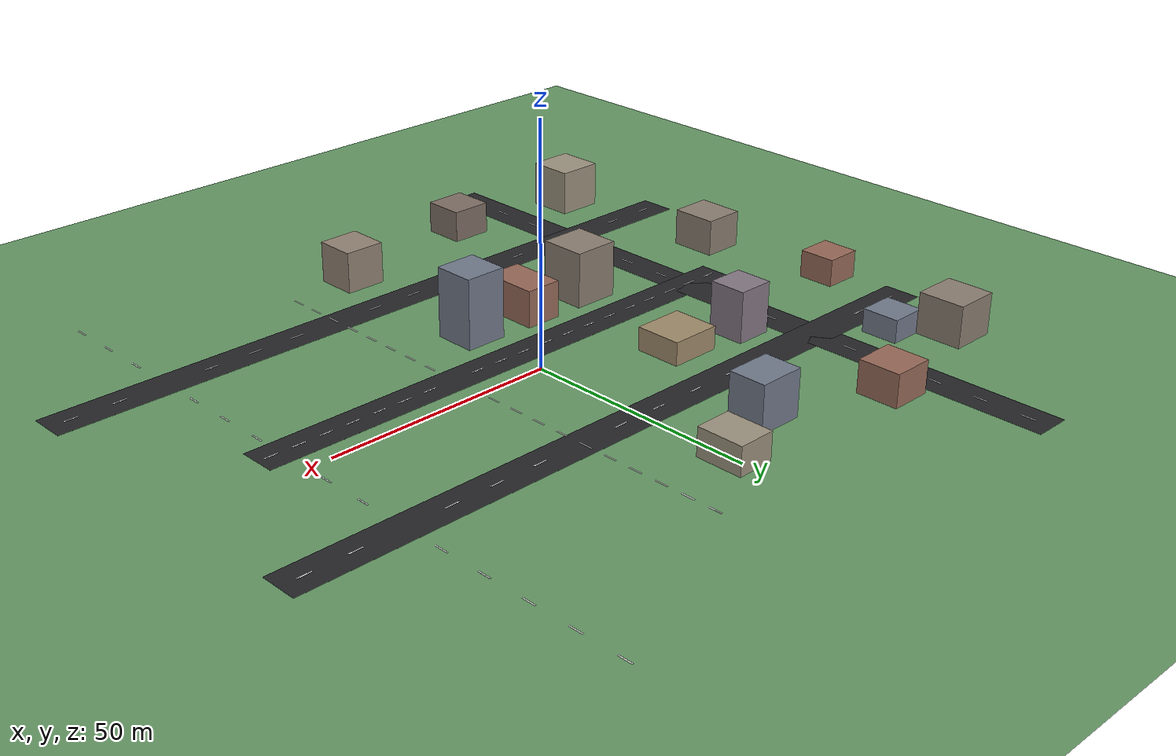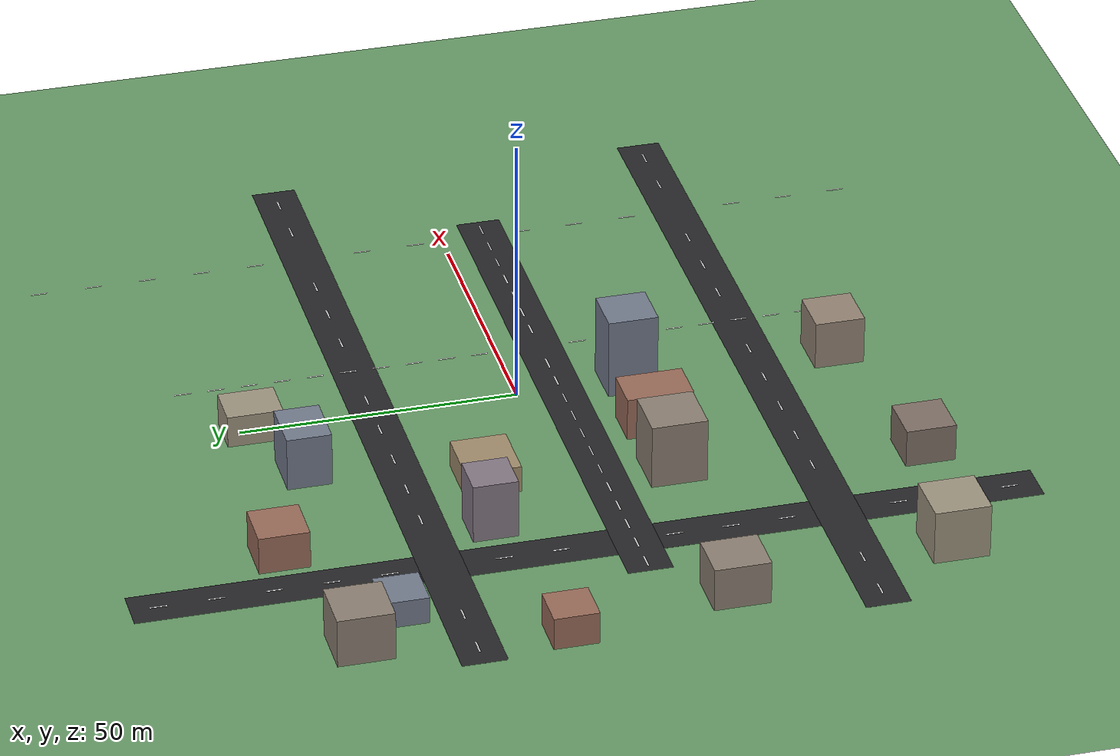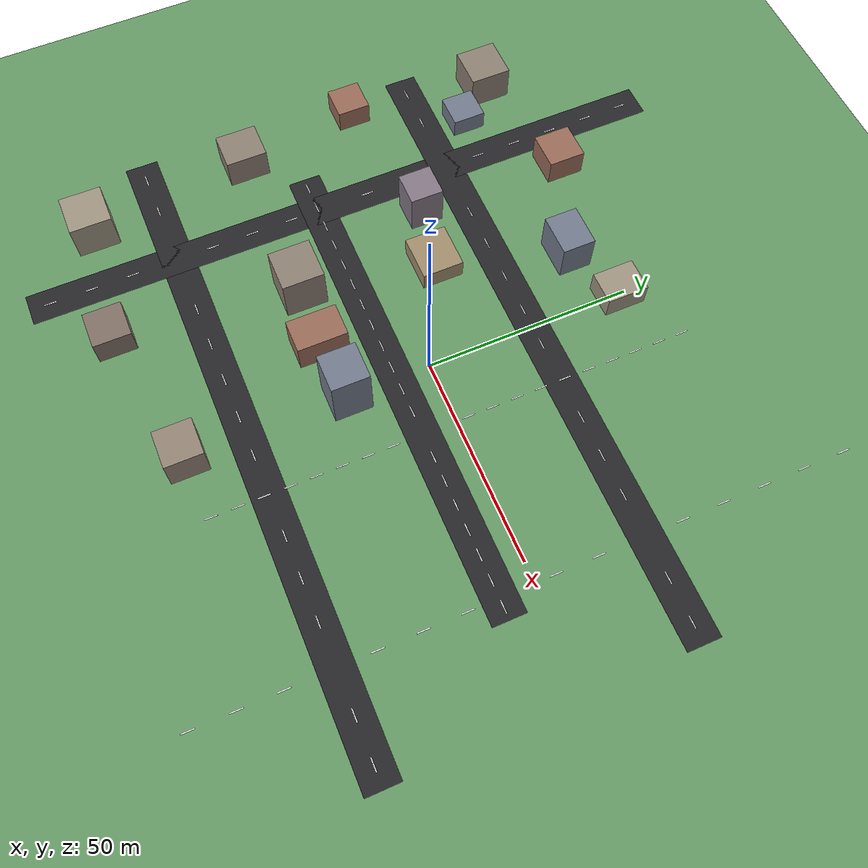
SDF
<sdf version="1.9">
 <world name="aruco_city">
  <model name="ground_plane">
   <static>true</static>
   <link name="link">
    <collision name="collision">
     <geometry><plane><normal>0 0 1</normal><size>200 200</size></plane></geometry>
    </collision>
    <visual name="visual">
     <geometry><plane><normal>0 0 1</normal><size>200 200</size></plane></geometry>
     <material><ambient>0.4 0.6 0.4 1</ambient><diffuse>0.4 0.6 0.4 1</diffuse></material>
    </visual>
   </link>
  </model>
  <model name="road_ew">
   <static>true</static>
   <pose>0 -8 0.002 0 0 0</pose>
   <link name="link">
    <collision name="collision"><geometry><box><size>120 8 0.004</size></box></geometry></collision>
    <visual name="visual">
     <geometry><box><size>120 8 0.004</size></box></geometry>
     <material><ambient>0.15 0.15 0.16 1</ambient><diffuse>0.15 0.15 0.16 1</diffuse></material>
    </visual>
   </link>
  </model>
  <model name="road_markings">
   <static>true</static>
   <link name="link">
    <visual name="stripe_ew_0">
     <pose>-57 -8 0.004 0 0 0</pose>
     <geometry><box><size>3.0 0.3 0.004</size></box></geometry>
     <material><ambient>0.9 0.9 0.9 1</ambient><diffuse>0.9 0.9 0.9 1</diffuse></material>
    </visual>
    <visual name="stripe_ew_1">
     <pose>-51 -8 0.004 0 0 0</pose>
     <geometry><box><size>3.0 0.3 0.004</size></box></geometry>
     <material><ambient>0.9 0.9 0.9 1</ambient><diffuse>0.9 0.9 0.9 1</diffuse></material>
    </visual>
    <visual name="stripe_ew_2">
     <pose>-45 -8 0.004 0 0 0</pose>
     <geometry><box><size>3.0 0.3 0.004</size></box></geometry>
     <material><ambient>0.9 0.9 0.9 1</ambient><diffuse>0.9 0.9 0.9 1</diffuse></material>
    </visual>
    <visual name="stripe_ew_3">
     <pose>-39 -8 0.004 0 0 0</pose>
     <geometry><box><size>3.0 0.3 0.004</size></box></geometry>
     <material><ambient>0.9 0.9 0.9 1</ambient><diffuse>0.9 0.9 0.9 1</diffuse></material>
    </visual>
    <visual name="stripe_ew_4">
     <pose>-33 -8 0.004 0 0 0</pose>
     <geometry><box><size>3.0 0.3 0.004</size></box></geometry>
     <material><ambient>0.9 0.9 0.9 1</ambient><diffuse>0.9 0.9 0.9 1</diffuse></material>
    </visual>
    <visual name="stripe_ew_5">
     <pose>-27 -8 0.004 0 0 0</pose>
     <geometry><box><size>3.0 0.3 0.004</size></box></geometry>
     <material><ambient>0.9 0.9 0.9 1</ambient><diffuse>0.9 0.9 0.9 1</diffuse></material>
    </visual>
    <visual name="stripe_ew_6">
     <pose>-21 -8 0.004 0 0 0</pose>
     <geometry><box><size>3.0 0.3 0.004</size></box></geometry>
     <material><ambient>0.9 0.9 0.9 1</ambient><diffuse>0.9 0.9 0.9 1</diffuse></material>
    </visual>
    <visual name="stripe_ew_7">
     <pose>-15 -8 0.004 0 0 0</pose>
     <geometry><box><size>3.0 0.3 0.004</size></box></geometry>
     <material><ambient>0.9 0.9 0.9 1</ambient><diffuse>0.9 0.9 0.9 1</diffuse></material>
    </visual>
    <visual name="stripe_ew_8">
     <pose>-9 -8 0.004 0 0 0</pose>
     <geometry><box><size>3.0 0.3 0.004</size></box></geometry>
     <material><ambient>0.9 0.9 0.9 1</ambient><diffuse>0.9 0.9 0.9 1</diffuse></material>
    </visual>
    <visual name="stripe_ew_9">
     <pose>-3 -8 0.004 0 0 0</pose>
     <geometry><box><size>3.0 0.3 0.004</size></box></geometry>
     <material><ambient>0.9 0.9 0.9 1</ambient><diffuse>0.9 0.9 0.9 1</diffuse></material>
    </visual>
    <visual name="stripe_ew_10">
     <pose>3 -8 0.004 0 0 0</pose>
     <geometry><box><size>3.0 0.3 0.004</size></box></geometry>
     <material><ambient>0.9 0.9 0.9 1</ambient><diffuse>0.9 0.9 0.9 1</diffuse></material>
    </visual>
    <visual name="stripe_ew_11">
     <pose>9 -8 0.004 0 0 0</pose>
     <geometry><box><size>3.0 0.3 0.004</size></box></geometry>
     <material><ambient>0.9 0.9 0.9 1</ambient><diffuse>0.9 0.9 0.9 1</diffuse></material>
    </visual>
    <visual name="stripe_ew_12">
     <pose>21 -8 0.004 0 0 0</pose>
     <geometry><box><size>3.0 0.3 0.004</size></box></geometry>
     <material><ambient>0.9 0.9 0.9 1</ambient><diffuse>0.9 0.9 0.9 1</diffuse></material>
    </visual>
    <visual name="stripe_ew_13">
     <pose>27 -8 0.004 0 0 0</pose>
     <geometry><box><size>3.0 0.3 0.004</size></box></geometry>
     <material><ambient>0.9 0.9 0.9 1</ambient><diffuse>0.9 0.9 0.9 1</diffuse></material>
    </visual>
    <visual name="stripe_ew_14">
     <pose>33 -8 0.004 0 0 0</pose>
     <geometry><box><size>3.0 0.3 0.004</size></box></geometry>
     <material><ambient>0.9 0.9 0.9 1</ambient><diffuse>0.9 0.9 0.9 1</diffuse></material>
    </visual>
    <visual name="stripe_ew_15">
     <pose>39 -8 0.004 0 0 0</pose>
     <geometry><box><size>3.0 0.3 0.004</size></box></geometry>
     <material><ambient>0.9 0.9 0.9 1</ambient><diffuse>0.9 0.9 0.9 1</diffuse></material>
    </visual>
    <visual name="stripe_ew_16">
     <pose>45 -8 0.004 0 0 0</pose>
     <geometry><box><size>3.0 0.3 0.004</size></box></geometry>
     <material><ambient>0.9 0.9 0.9 1</ambient><diffuse>0.9 0.9 0.9 1</diffuse></material>
    </visual>
    <visual name="stripe_ew_17">
     <pose>51 -8 0.004 0 0 0</pose>
     <geometry><box><size>3.0 0.3 0.004</size></box></geometry>
     <material><ambient>0.9 0.9 0.9 1</ambient><diffuse>0.9 0.9 0.9 1</diffuse></material>
    </visual>
    <visual name="stripe_ew_18">
     <pose>57 -8 0.004 0 0 0</pose>
     <geometry><box><size>3.0 0.3 0.004</size></box></geometry>
     <material><ambient>0.9 0.9 0.9 1</ambient><diffuse>0.9 0.9 0.9 1</diffuse></material>
    </visual>
    <visual name="stripe_ns_0">
     <pose>15 -57 0.004 0 0 0</pose>
     <geometry><box><size>0.3 3.0 0.004</size></box></geometry>
     <material><ambient>0.9 0.9 0.9 1</ambient><diffuse>0.9 0.9 0.9 1</diffuse></material>
    </visual>
    <visual name="stripe_ns_1">
     <pose>15 -51 0.004 0 0 0</pose>
     <geometry><box><size>0.3 3.0 0.004</size></box></geometry>
     <material><ambient>0.9 0.9 0.9 1</ambient><diffuse>0.9 0.9 0.9 1</diffuse></material>
    </visual>
    <visual name="stripe_ns_2">
     <pose>15 -45 0.004 0 0 0</pose>
     <geometry><box><size>0.3 3.0 0.004</size></box></geometry>
     <material><ambient>0.9 0.9 0.9 1</ambient><diffuse>0.9 0.9 0.9 1</diffuse></material>
    </visual>
    <visual name="stripe_ns_3">
     <pose>15 -39 0.004 0 0 0</pose>
     <geometry><box><size>0.3 3.0 0.004</size></box></geometry>
     <material><ambient>0.9 0.9 0.9 1</ambient><diffuse>0.9 0.9 0.9 1</diffuse></material>
    </visual>
    <visual name="stripe_ns_4">
     <pose>15 -33 0.004 0 0 0</pose>
     <geometry><box><size>0.3 3.0 0.004</size></box></geometry>
     <material><ambient>0.9 0.9 0.9 1</ambient><diffuse>0.9 0.9 0.9 1</diffuse></material>
    </visual>
    <visual name="stripe_ns_5">
     <pose>15 -27 0.004 0 0 0</pose>
     <geometry><box><size>0.3 3.0 0.004</size></box></geometry>
     <material><ambient>0.9 0.9 0.9 1</ambient><diffuse>0.9 0.9 0.9 1</diffuse></material>
    </visual>
    <visual name="stripe_ns_6">
     <pose>15 -21 0.004 0 0 0</pose>
     <geometry><box><size>0.3 3.0 0.004</size></box></geometry>
     <material><ambient>0.9 0.9 0.9 1</ambient><diffuse>0.9 0.9 0.9 1</diffuse></material>
    </visual>
    <visual name="stripe_ns_7">
     <pose>15 -15 0.004 0 0 0</pose>
     <geometry><box><size>0.3 3.0 0.004</size></box></geometry>
     <material><ambient>0.9 0.9 0.9 1</ambient><diffuse>0.9 0.9 0.9 1</diffuse></material>
    </visual>
    <visual name="stripe_ns_8">
     <pose>15 3 0.004 0 0 0</pose>
     <geometry><box><size>0.3 3.0 0.004</size></box></geometry>
     <material><ambient>0.9 0.9 0.9 1</ambient><diffuse>0.9 0.9 0.9 1</diffuse></material>
    </visual>
    <visual name="stripe_ns_9">
     <pose>15 9 0.004 0 0 0</pose>
     <geometry><box><size>0.3 3.0 0.004</size></box></geometry>
     <material><ambient>0.9 0.9 0.9 1</ambient><diffuse>0.9 0.9 0.9 1</diffuse></material>
    </visual>
    <visual name="stripe_ns_10">
     <pose>15 15 0.004 0 0 0</pose>
     <geometry><box><size>0.3 3.0 0.004</size></box></geometry>
     <material><ambient>0.9 0.9 0.9 1</ambient><diffuse>0.9 0.9 0.9 1</diffuse></material>
    </visual>
    <visual name="stripe_ns_11">
     <pose>15 21 0.004 0 0 0</pose>
     <geometry><box><size>0.3 3.0 0.004</size></box></geometry>
     <material><ambient>0.9 0.9 0.9 1</ambient><diffuse>0.9 0.9 0.9 1</diffuse></material>
    </visual>
    <visual name="stripe_ns_12">
     <pose>15 27 0.004 0 0 0</pose>
     <geometry><box><size>0.3 3.0 0.004</size></box></geometry>
     <material><ambient>0.9 0.9 0.9 1</ambient><diffuse>0.9 0.9 0.9 1</diffuse></material>
    </visual>
    <visual name="stripe_ns_13">
     <pose>15 33 0.004 0 0 0</pose>
     <geometry><box><size>0.3 3.0 0.004</size></box></geometry>
     <material><ambient>0.9 0.9 0.9 1</ambient><diffuse>0.9 0.9 0.9 1</diffuse></material>
    </visual>
    <visual name="stripe_ns_14">
     <pose>15 39 0.004 0 0 0</pose>
     <geometry><box><size>0.3 3.0 0.004</size></box></geometry>
     <material><ambient>0.9 0.9 0.9 1</ambient><diffuse>0.9 0.9 0.9 1</diffuse></material>
    </visual>
    <visual name="stripe_ns_15">
     <pose>15 45 0.004 0 0 0</pose>
     <geometry><box><size>0.3 3.0 0.004</size></box></geometry>
     <material><ambient>0.9 0.9 0.9 1</ambient><diffuse>0.9 0.9 0.9 1</diffuse></material>
    </visual>
    <visual name="stripe_ns_16">
     <pose>15 51 0.004 0 0 0</pose>
     <geometry><box><size>0.3 3.0 0.004</size></box></geometry>
     <material><ambient>0.9 0.9 0.9 1</ambient><diffuse>0.9 0.9 0.9 1</diffuse></material>
    </visual>
    <visual name="stripe_ns_17">
     <pose>15 57 0.004 0 0 0</pose>
     <geometry><box><size>0.3 3.0 0.004</size></box></geometry>
     <material><ambient>0.9 0.9 0.9 1</ambient><diffuse>0.9 0.9 0.9 1</diffuse></material>
    </visual>
   </link>
  </model>
  <model name="bldg_s1">
   <static>true</static>
   <pose>-30 -20 6.0 0 0 0</pose>
   <link name="link">
    <collision name="collision"><geometry><box><size>10 10 12</size></box></geometry></collision>
    <visual name="visual">
     <geometry><box><size>10 10 12</size></box></geometry>
     <material><ambient>0.55 0.5 0.45 1</ambient><diffuse>0.55 0.5 0.45 1</diffuse></material>
    </visual>
   </link>
  </model>
  <model name="bldg_s2">
   <static>true</static>
   <pose>-15 -21 4.0 0 0 0</pose>
   <link name="link">
    <collision name="collision"><geometry><box><size>8 12 8</size></box></geometry></collision>
    <visual name="visual">
     <geometry><box><size>8 12 8</size></box></geometry>
     <material><ambient>0.6 0.42 0.35 1</ambient><diffuse>0.6 0.42 0.35 1</diffuse></material>
    </visual>
   </link>
  </model>
  <model name="bldg_s3">
   <static>true</static>
   <pose>0 -20 7.5 0 0 0</pose>
   <link name="link">
    <collision name="collision"><geometry><box><size>9 9 15</size></box></geometry></collision>
    <visual name="visual">
     <geometry><box><size>9 9 15</size></box></geometry>
     <material><ambient>0.45 0.48 0.55 1</ambient><diffuse>0.45 0.48 0.55 1</diffuse></material>
    </visual>
   </link>
  </model>
  <model name="bldg_n3">
   <static>true</static>
   <pose>-25 12 2.5 0 0 0</pose>
   <link name="link">
    <collision name="collision"><geometry><box><size>11 10 5</size></box></geometry></collision>
    <visual name="visual">
     <geometry><box><size>11 10 5</size></box></geometry>
     <material><ambient>0.63 0.55 0.42 1</ambient><diffuse>0.63 0.55 0.42 1</diffuse></material>
    </visual>
   </link>
  </model>
  <model name="bldg_n4">
   <static>true</static>
   <pose>-40 15 5.5 0 0 0</pose>
   <link name="link">
    <collision name="collision"><geometry><box><size>8 8 11</size></box></geometry></collision>
    <visual name="visual">
     <geometry><box><size>8 8 11</size></box></geometry>
     <material><ambient>0.52 0.47 0.52 1</ambient><diffuse>0.52 0.47 0.52 1</diffuse></material>
    </visual>
   </link>
  </model>
  <model name="road_ew_north">
   <static>true</static>
   <pose>0 26 0.002 0 0 0</pose>
   <link name="link">
    <collision name="collision"><geometry><box><size>160 8 0.004</size></box></geometry></collision>
    <visual name="visual">
     <geometry><box><size>160 8 0.004</size></box></geometry>
     <material><ambient>0.15 0.15 0.16 1</ambient><diffuse>0.15 0.15 0.16 1</diffuse></material>
    </visual>
   </link>
  </model>
  <model name="road_ew_south">
   <static>true</static>
   <pose>0 -44 0.002 0 0 0</pose>
   <link name="link">
    <collision name="collision"><geometry><box><size>160 8 0.004</size></box></geometry></collision>
    <visual name="visual">
     <geometry><box><size>160 8 0.004</size></box></geometry>
     <material><ambient>0.15 0.15 0.16 1</ambient><diffuse>0.15 0.15 0.16 1</diffuse></material>
    </visual>
   </link>
  </model>
  <model name="road_ns_west">
   <static>true</static>
   <pose>-50 0 0.002 0 0 0</pose>
   <link name="link">
    <collision name="collision"><geometry><box><size>8 160 0.004</size></box></geometry></collision>
    <visual name="visual">
     <geometry><box><size>8 160 0.004</size></box></geometry>
     <material><ambient>0.15 0.15 0.16 1</ambient><diffuse>0.15 0.15 0.16 1</diffuse></material>
    </visual>
   </link>
  </model>
  <model name="road_markings_2">
   <static>true</static>
   <link name="link">
    <visual name="s2_0">
     <pose>-75 26 0.004 0 0 0</pose>
     <geometry><box><size>3.0 0.3 0.004</size></box></geometry>
     <material><ambient>0.9 0.9 0.9 1</ambient><diffuse>0.9 0.9 0.9 1</diffuse></material>
    </visual>
    <visual name="s2_1">
     <pose>-65 26 0.004 0 0 0</pose>
     <geometry><box><size>3.0 0.3 0.004</size></box></geometry>
     <material><ambient>0.9 0.9 0.9 1</ambient><diffuse>0.9 0.9 0.9 1</diffuse></material>
    </visual>
    <visual name="s2_2">
     <pose>-35 26 0.004 0 0 0</pose>
     <geometry><box><size>3.0 0.3 0.004</size></box></geometry>
     <material><ambient>0.9 0.9 0.9 1</ambient><diffuse>0.9 0.9 0.9 1</diffuse></material>
    </visual>
    <visual name="s2_3">
     <pose>-25 26 0.004 0 0 0</pose>
     <geometry><box><size>3.0 0.3 0.004</size></box></geometry>
     <material><ambient>0.9 0.9 0.9 1</ambient><diffuse>0.9 0.9 0.9 1</diffuse></material>
    </visual>
    <visual name="s2_4">
     <pose>-15 26 0.004 0 0 0</pose>
     <geometry><box><size>3.0 0.3 0.004</size></box></geometry>
     <material><ambient>0.9 0.9 0.9 1</ambient><diffuse>0.9 0.9 0.9 1</diffuse></material>
    </visual>
    <visual name="s2_5">
     <pose>-5 26 0.004 0 0 0</pose>
     <geometry><box><size>3.0 0.3 0.004</size></box></geometry>
     <material><ambient>0.9 0.9 0.9 1</ambient><diffuse>0.9 0.9 0.9 1</diffuse></material>
    </visual>
    <visual name="s2_6">
     <pose>5 26 0.004 0 0 0</pose>
     <geometry><box><size>3.0 0.3 0.004</size></box></geometry>
     <material><ambient>0.9 0.9 0.9 1</ambient><diffuse>0.9 0.9 0.9 1</diffuse></material>
    </visual>
    <visual name="s2_7">
     <pose>25 26 0.004 0 0 0</pose>
     <geometry><box><size>3.0 0.3 0.004</size></box></geometry>
     <material><ambient>0.9 0.9 0.9 1</ambient><diffuse>0.9 0.9 0.9 1</diffuse></material>
    </visual>
    <visual name="s2_8">
     <pose>35 26 0.004 0 0 0</pose>
     <geometry><box><size>3.0 0.3 0.004</size></box></geometry>
     <material><ambient>0.9 0.9 0.9 1</ambient><diffuse>0.9 0.9 0.9 1</diffuse></material>
    </visual>
    <visual name="s2_9">
     <pose>45 26 0.004 0 0 0</pose>
     <geometry><box><size>3.0 0.3 0.004</size></box></geometry>
     <material><ambient>0.9 0.9 0.9 1</ambient><diffuse>0.9 0.9 0.9 1</diffuse></material>
    </visual>
    <visual name="s2_10">
     <pose>65 26 0.004 0 0 0</pose>
     <geometry><box><size>3.0 0.3 0.004</size></box></geometry>
     <material><ambient>0.9 0.9 0.9 1</ambient><diffuse>0.9 0.9 0.9 1</diffuse></material>
    </visual>
    <visual name="s2_11">
     <pose>75 26 0.004 0 0 0</pose>
     <geometry><box><size>3.0 0.3 0.004</size></box></geometry>
     <material><ambient>0.9 0.9 0.9 1</ambient><diffuse>0.9 0.9 0.9 1</diffuse></material>
    </visual>
    <visual name="s2_12">
     <pose>-75 -44 0.004 0 0 0</pose>
     <geometry><box><size>3.0 0.3 0.004</size></box></geometry>
     <material><ambient>0.9 0.9 0.9 1</ambient><diffuse>0.9 0.9 0.9 1</diffuse></material>
    </visual>
    <visual name="s2_13">
     <pose>-65 -44 0.004 0 0 0</pose>
     <geometry><box><size>3.0 0.3 0.004</size></box></geometry>
     <material><ambient>0.9 0.9 0.9 1</ambient><diffuse>0.9 0.9 0.9 1</diffuse></material>
    </visual>
    <visual name="s2_14">
     <pose>-35 -44 0.004 0 0 0</pose>
     <geometry><box><size>3.0 0.3 0.004</size></box></geometry>
     <material><ambient>0.9 0.9 0.9 1</ambient><diffuse>0.9 0.9 0.9 1</diffuse></material>
    </visual>
    <visual name="s2_15">
     <pose>-25 -44 0.004 0 0 0</pose>
     <geometry><box><size>3.0 0.3 0.004</size></box></geometry>
     <material><ambient>0.9 0.9 0.9 1</ambient><diffuse>0.9 0.9 0.9 1</diffuse></material>
    </visual>
    <visual name="s2_16">
     <pose>-15 -44 0.004 0 0 0</pose>
     <geometry><box><size>3.0 0.3 0.004</size></box></geometry>
     <material><ambient>0.9 0.9 0.9 1</ambient><diffuse>0.9 0.9 0.9 1</diffuse></material>
    </visual>
    <visual name="s2_17">
     <pose>-5 -44 0.004 0 0 0</pose>
     <geometry><box><size>3.0 0.3 0.004</size></box></geometry>
     <material><ambient>0.9 0.9 0.9 1</ambient><diffuse>0.9 0.9 0.9 1</diffuse></material>
    </visual>
    <visual name="s2_18">
     <pose>5 -44 0.004 0 0 0</pose>
     <geometry><box><size>3.0 0.3 0.004</size></box></geometry>
     <material><ambient>0.9 0.9 0.9 1</ambient><diffuse>0.9 0.9 0.9 1</diffuse></material>
    </visual>
    <visual name="s2_19">
     <pose>25 -44 0.004 0 0 0</pose>
     <geometry><box><size>3.0 0.3 0.004</size></box></geometry>
     <material><ambient>0.9 0.9 0.9 1</ambient><diffuse>0.9 0.9 0.9 1</diffuse></material>
    </visual>
    <visual name="s2_20">
     <pose>35 -44 0.004 0 0 0</pose>
     <geometry><box><size>3.0 0.3 0.004</size></box></geometry>
     <material><ambient>0.9 0.9 0.9 1</ambient><diffuse>0.9 0.9 0.9 1</diffuse></material>
    </visual>
    <visual name="s2_21">
     <pose>45 -44 0.004 0 0 0</pose>
     <geometry><box><size>3.0 0.3 0.004</size></box></geometry>
     <material><ambient>0.9 0.9 0.9 1</ambient><diffuse>0.9 0.9 0.9 1</diffuse></material>
    </visual>
    <visual name="s2_22">
     <pose>65 -44 0.004 0 0 0</pose>
     <geometry><box><size>3.0 0.3 0.004</size></box></geometry>
     <material><ambient>0.9 0.9 0.9 1</ambient><diffuse>0.9 0.9 0.9 1</diffuse></material>
    </visual>
    <visual name="s2_23">
     <pose>75 -44 0.004 0 0 0</pose>
     <geometry><box><size>3.0 0.3 0.004</size></box></geometry>
     <material><ambient>0.9 0.9 0.9 1</ambient><diffuse>0.9 0.9 0.9 1</diffuse></material>
    </visual>
    <visual name="s2_24">
     <pose>-50 -75 0.004 0 0 0</pose>
     <geometry><box><size>0.3 3.0 0.004</size></box></geometry>
     <material><ambient>0.9 0.9 0.9 1</ambient><diffuse>0.9 0.9 0.9 1</diffuse></material>
    </visual>
    <visual name="s2_25">
     <pose>-50 -65 0.004 0 0 0</pose>
     <geometry><box><size>0.3 3.0 0.004</size></box></geometry>
     <material><ambient>0.9 0.9 0.9 1</ambient><diffuse>0.9 0.9 0.9 1</diffuse></material>
    </visual>
    <visual name="s2_26">
     <pose>-50 -55 0.004 0 0 0</pose>
     <geometry><box><size>0.3 3.0 0.004</size></box></geometry>
     <material><ambient>0.9 0.9 0.9 1</ambient><diffuse>0.9 0.9 0.9 1</diffuse></material>
    </visual>
    <visual name="s2_27">
     <pose>-50 -35 0.004 0 0 0</pose>
     <geometry><box><size>0.3 3.0 0.004</size></box></geometry>
     <material><ambient>0.9 0.9 0.9 1</ambient><diffuse>0.9 0.9 0.9 1</diffuse></material>
    </visual>
    <visual name="s2_28">
     <pose>-50 -25 0.004 0 0 0</pose>
     <geometry><box><size>0.3 3.0 0.004</size></box></geometry>
     <material><ambient>0.9 0.9 0.9 1</ambient><diffuse>0.9 0.9 0.9 1</diffuse></material>
    </visual>
    <visual name="s2_29">
     <pose>-50 -15 0.004 0 0 0</pose>
     <geometry><box><size>0.3 3.0 0.004</size></box></geometry>
     <material><ambient>0.9 0.9 0.9 1</ambient><diffuse>0.9 0.9 0.9 1</diffuse></material>
    </visual>
    <visual name="s2_30">
     <pose>-50 5 0.004 0 0 0</pose>
     <geometry><box><size>0.3 3.0 0.004</size></box></geometry>
     <material><ambient>0.9 0.9 0.9 1</ambient><diffuse>0.9 0.9 0.9 1</diffuse></material>
    </visual>
    <visual name="s2_31">
     <pose>-50 15 0.004 0 0 0</pose>
     <geometry><box><size>0.3 3.0 0.004</size></box></geometry>
     <material><ambient>0.9 0.9 0.9 1</ambient><diffuse>0.9 0.9 0.9 1</diffuse></material>
    </visual>
    <visual name="s2_32">
     <pose>-50 35 0.004 0 0 0</pose>
     <geometry><box><size>0.3 3.0 0.004</size></box></geometry>
     <material><ambient>0.9 0.9 0.9 1</ambient><diffuse>0.9 0.9 0.9 1</diffuse></material>
    </visual>
    <visual name="s2_33">
     <pose>-50 45 0.004 0 0 0</pose>
     <geometry><box><size>0.3 3.0 0.004</size></box></geometry>
     <material><ambient>0.9 0.9 0.9 1</ambient><diffuse>0.9 0.9 0.9 1</diffuse></material>
    </visual>
    <visual name="s2_34">
     <pose>-50 55 0.004 0 0 0</pose>
     <geometry><box><size>0.3 3.0 0.004</size></box></geometry>
     <material><ambient>0.9 0.9 0.9 1</ambient><diffuse>0.9 0.9 0.9 1</diffuse></material>
    </visual>
    <visual name="s2_35">
     <pose>-50 65 0.004 0 0 0</pose>
     <geometry><box><size>0.3 3.0 0.004</size></box></geometry>
     <material><ambient>0.9 0.9 0.9 1</ambient><diffuse>0.9 0.9 0.9 1</diffuse></material>
    </visual>
    <visual name="s2_36">
     <pose>-50 75 0.004 0 0 0</pose>
     <geometry><box><size>0.3 3.0 0.004</size></box></geometry>
     <material><ambient>0.9 0.9 0.9 1</ambient><diffuse>0.9 0.9 0.9 1</diffuse></material>
    </visual>
    <visual name="s2_37">
     <pose>55 -75 0.004 0 0 0</pose>
     <geometry><box><size>0.3 3.0 0.004</size></box></geometry>
     <material><ambient>0.9 0.9 0.9 1</ambient><diffuse>0.9 0.9 0.9 1</diffuse></material>
    </visual>
    <visual name="s2_38">
     <pose>55 -65 0.004 0 0 0</pose>
     <geometry><box><size>0.3 3.0 0.004</size></box></geometry>
     <material><ambient>0.9 0.9 0.9 1</ambient><diffuse>0.9 0.9 0.9 1</diffuse></material>
    </visual>
    <visual name="s2_39">
     <pose>55 -55 0.004 0 0 0</pose>
     <geometry><box><size>0.3 3.0 0.004</size></box></geometry>
     <material><ambient>0.9 0.9 0.9 1</ambient><diffuse>0.9 0.9 0.9 1</diffuse></material>
    </visual>
    <visual name="s2_40">
     <pose>55 -35 0.004 0 0 0</pose>
     <geometry><box><size>0.3 3.0 0.004</size></box></geometry>
     <material><ambient>0.9 0.9 0.9 1</ambient><diffuse>0.9 0.9 0.9 1</diffuse></material>
    </visual>
    <visual name="s2_41">
     <pose>55 -25 0.004 0 0 0</pose>
     <geometry><box><size>0.3 3.0 0.004</size></box></geometry>
     <material><ambient>0.9 0.9 0.9 1</ambient><diffuse>0.9 0.9 0.9 1</diffuse></material>
    </visual>
    <visual name="s2_42">
     <pose>55 -15 0.004 0 0 0</pose>
     <geometry><box><size>0.3 3.0 0.004</size></box></geometry>
     <material><ambient>0.9 0.9 0.9 1</ambient><diffuse>0.9 0.9 0.9 1</diffuse></material>
    </visual>
    <visual name="s2_43">
     <pose>55 5 0.004 0 0 0</pose>
     <geometry><box><size>0.3 3.0 0.004</size></box></geometry>
     <material><ambient>0.9 0.9 0.9 1</ambient><diffuse>0.9 0.9 0.9 1</diffuse></material>
    </visual>
    <visual name="s2_44">
     <pose>55 15 0.004 0 0 0</pose>
     <geometry><box><size>0.3 3.0 0.004</size></box></geometry>
     <material><ambient>0.9 0.9 0.9 1</ambient><diffuse>0.9 0.9 0.9 1</diffuse></material>
    </visual>
    <visual name="s2_45">
     <pose>55 35 0.004 0 0 0</pose>
     <geometry><box><size>0.3 3.0 0.004</size></box></geometry>
     <material><ambient>0.9 0.9 0.9 1</ambient><diffuse>0.9 0.9 0.9 1</diffuse></material>
    </visual>
    <visual name="s2_46">
     <pose>55 45 0.004 0 0 0</pose>
     <geometry><box><size>0.3 3.0 0.004</size></box></geometry>
     <material><ambient>0.9 0.9 0.9 1</ambient><diffuse>0.9 0.9 0.9 1</diffuse></material>
    </visual>
    <visual name="s2_47">
     <pose>55 55 0.004 0 0 0</pose>
     <geometry><box><size>0.3 3.0 0.004</size></box></geometry>
     <material><ambient>0.9 0.9 0.9 1</ambient><diffuse>0.9 0.9 0.9 1</diffuse></material>
    </visual>
    <visual name="s2_48">
     <pose>55 65 0.004 0 0 0</pose>
     <geometry><box><size>0.3 3.0 0.004</size></box></geometry>
     <material><ambient>0.9 0.9 0.9 1</ambient><diffuse>0.9 0.9 0.9 1</diffuse></material>
    </visual>
    <visual name="s2_49">
     <pose>55 75 0.004 0 0 0</pose>
     <geometry><box><size>0.3 3.0 0.004</size></box></geometry>
     <material><ambient>0.9 0.9 0.9 1</ambient><diffuse>0.9 0.9 0.9 1</diffuse></material>
    </visual>
   </link>
  </model>
  <model name="bldg_n5">
   <static>true</static>
   <pose>-70 45 4.5 0 0 0</pose>
   <link name="link">
    <collision name="collision"><geometry><box><size>10 10 9</size></box></geometry></collision>
    <visual name="visual">
     <geometry><box><size>10 10 9</size></box></geometry>
     <material><ambient>0.55 0.5 0.45 1</ambient><diffuse>0.55 0.5 0.45 1</diffuse></material>
    </visual>
   </link>
  </model>
  <model name="bldg_n6">
   <static>true</static>
   <pose>-40 52 3.5 0 0 0</pose>
   <link name="link">
    <collision name="collision"><geometry><box><size>9 9 7</size></box></geometry></collision>
    <visual name="visual">
     <geometry><box><size>9 9 7</size></box></geometry>
     <material><ambient>0.6 0.42 0.35 1</ambient><diffuse>0.6 0.42 0.35 1</diffuse></material>
    </visual>
   </link>
  </model>
  <model name="bldg_n7">
   <static>true</static>
   <pose>-15 42 5.0 0 0 0</pose>
   <link name="link">
    <collision name="collision"><geometry><box><size>10 8 10</size></box></geometry></collision>
    <visual name="visual">
     <geometry><box><size>10 8 10</size></box></geometry>
     <material><ambient>0.45 0.48 0.55 1</ambient><diffuse>0.45 0.48 0.55 1</diffuse></material>
    </visual>
   </link>
  </model>
  <model name="bldg_n8">
   <static>true</static>
   <pose>0 48 3.0 0 0 0</pose>
   <link name="link">
    <collision name="collision"><geometry><box><size>8 10 6</size></box></geometry></collision>
    <visual name="visual">
     <geometry><box><size>8 10 6</size></box></geometry>
     <material><ambient>0.62 0.58 0.5 1</ambient><diffuse>0.62 0.58 0.5 1</diffuse></material>
    </visual>
   </link>
  </model>
  <model name="bldg_w1">
   <static>true</static>
   <pose>-70 -20 4.0 0 0 0</pose>
   <link name="link">
    <collision name="collision"><geometry><box><size>9 10 8</size></box></geometry></collision>
    <visual name="visual">
     <geometry><box><size>9 10 8</size></box></geometry>
     <material><ambient>0.55 0.5 0.45 1</ambient><diffuse>0.55 0.5 0.45 1</diffuse></material>
    </visual>
   </link>
  </model>
  <model name="bldg_w2">
   <static>true</static>
   <pose>-75 10 3.0 0 0 0</pose>
   <link name="link">
    <collision name="collision"><geometry><box><size>8 8 6</size></box></geometry></collision>
    <visual name="visual">
     <geometry><box><size>8 8 6</size></box></geometry>
     <material><ambient>0.6 0.42 0.35 1</ambient><diffuse>0.6 0.42 0.35 1</diffuse></material>
    </visual>
   </link>
  </model>
  <model name="bldg_w3">
   <static>true</static>
   <pose>-62 36 2.5 0 0 0</pose>
   <link name="link">
    <collision name="collision"><geometry><box><size>8 8 5</size></box></geometry></collision>
    <visual name="visual">
     <geometry><box><size>8 8 5</size></box></geometry>
     <material><ambient>0.45 0.48 0.55 1</ambient><diffuse>0.45 0.48 0.55 1</diffuse></material>
    </visual>
   </link>
  </model>
  <model name="bldg_s6">
   <static>true</static>
   <pose>-65 -60 5.0 0 0 0</pose>
   <link name="link">
    <collision name="collision"><geometry><box><size>10 10 10</size></box></geometry></collision>
    <visual name="visual">
     <geometry><box><size>10 10 10</size></box></geometry>
     <material><ambient>0.62 0.58 0.5 1</ambient><diffuse>0.62 0.58 0.5 1</diffuse></material>
    </visual>
   </link>
  </model>
  <model name="bldg_s7">
   <static>true</static>
   <pose>-35 -64 3.5 0 0 0</pose>
   <link name="link">
    <collision name="collision"><geometry><box><size>9 9 7</size></box></geometry></collision>
    <visual name="visual">
     <geometry><box><size>9 9 7</size></box></geometry>
     <material><ambient>0.5 0.44 0.4 1</ambient><diffuse>0.5 0.44 0.4 1</diffuse></material>
    </visual>
   </link>
  </model>
  <model name="bldg_s8">
   <static>true</static>
   <pose>0 -58 4.5 0 0 0</pose>
   <link name="link">
    <collision name="collision"><geometry><box><size>9 9 9</size></box></geometry></collision>
    <visual name="visual">
     <geometry><box><size>9 9 9</size></box></geometry>
     <material><ambient>0.58 0.52 0.46 1</ambient><diffuse>0.58 0.52 0.46 1</diffuse></material>
    </visual>
   </link>
  </model>
 </world>
</sdf>
